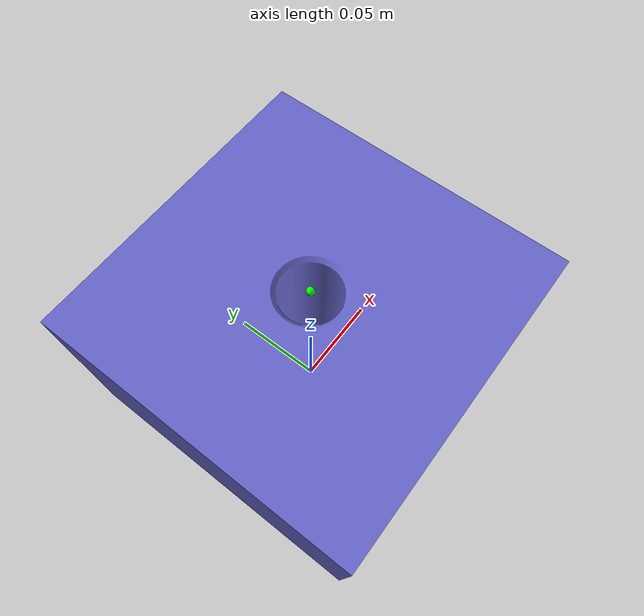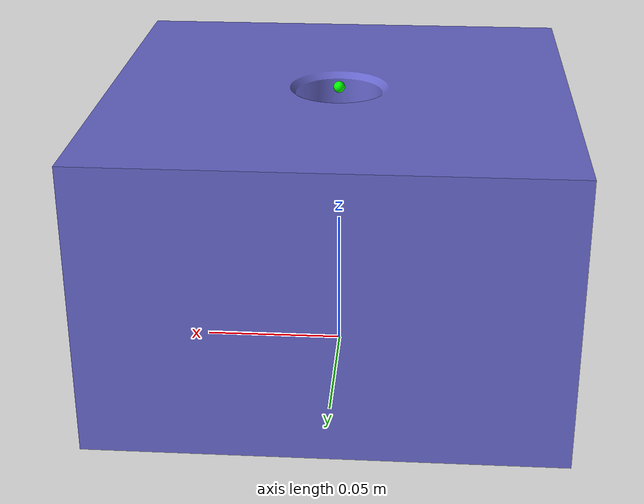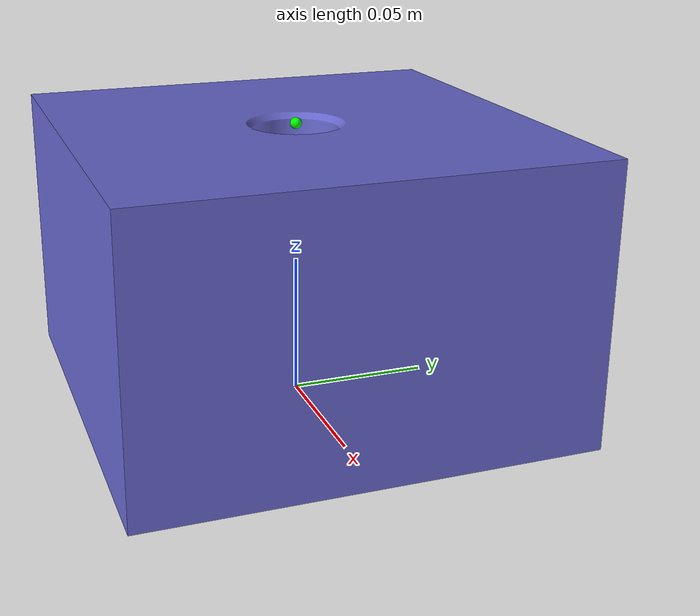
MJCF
<mujoco model="hole_cyl_l_tight">
  <asset>
    <mesh name="hole_cyl_l_tight_visual" file="meshes/hole_cyl_l_tight.stl" scale="0.001 0.001 0.001"/>
    <mesh name="hole_cyl_l_tight_col_0" file="meshes/hole_cyl_l_tight_col_0.stl" scale="0.001 0.001 0.001"/>
    <mesh name="hole_cyl_l_tight_col_1" file="meshes/hole_cyl_l_tight_col_1.stl" scale="0.001 0.001 0.001"/>
    <mesh name="hole_cyl_l_tight_col_2" file="meshes/hole_cyl_l_tight_col_2.stl" scale="0.001 0.001 0.001"/>
    <mesh name="hole_cyl_l_tight_col_3" file="meshes/hole_cyl_l_tight_col_3.stl" scale="0.001 0.001 0.001"/>
    <mesh name="hole_cyl_l_tight_col_4" file="meshes/hole_cyl_l_tight_col_4.stl" scale="0.001 0.001 0.001"/>
    <mesh name="hole_cyl_l_tight_col_5" file="meshes/hole_cyl_l_tight_col_5.stl" scale="0.001 0.001 0.001"/>
    <mesh name="hole_cyl_l_tight_col_6" file="meshes/hole_cyl_l_tight_col_6.stl" scale="0.001 0.001 0.001"/>
    <mesh name="hole_cyl_l_tight_col_7" file="meshes/hole_cyl_l_tight_col_7.stl" scale="0.001 0.001 0.001"/>
    <mesh name="hole_cyl_l_tight_col_8" file="meshes/hole_cyl_l_tight_col_8.stl" scale="0.001 0.001 0.001"/>
    <mesh name="hole_cyl_l_tight_col_9" file="meshes/hole_cyl_l_tight_col_9.stl" scale="0.001 0.001 0.001"/>
    <mesh name="hole_cyl_l_tight_col_10" file="meshes/hole_cyl_l_tight_col_10.stl" scale="0.001 0.001 0.001"/>
    <mesh name="hole_cyl_l_tight_col_11" file="meshes/hole_cyl_l_tight_col_11.stl" scale="0.001 0.001 0.001"/>
    <mesh name="hole_cyl_l_tight_col_12" file="meshes/hole_cyl_l_tight_col_12.stl" scale="0.001 0.001 0.001"/>
    <mesh name="hole_cyl_l_tight_col_13" file="meshes/hole_cyl_l_tight_col_13.stl" scale="0.001 0.001 0.001"/>
    <mesh name="hole_cyl_l_tight_col_14" file="meshes/hole_cyl_l_tight_col_14.stl" scale="0.001 0.001 0.001"/>
    <mesh name="hole_cyl_l_tight_col_15" file="meshes/hole_cyl_l_tight_col_15.stl" scale="0.001 0.001 0.001"/>
    <mesh name="hole_cyl_l_tight_col_16" file="meshes/hole_cyl_l_tight_col_16.stl" scale="0.001 0.001 0.001"/>
    <mesh name="hole_cyl_l_tight_col_17" file="meshes/hole_cyl_l_tight_col_17.stl" scale="0.001 0.001 0.001"/>
    <mesh name="hole_cyl_l_tight_col_18" file="meshes/hole_cyl_l_tight_col_18.stl" scale="0.001 0.001 0.001"/>
    <mesh name="hole_cyl_l_tight_col_19" file="meshes/hole_cyl_l_tight_col_19.stl" scale="0.001 0.001 0.001"/>
    <mesh name="hole_cyl_l_tight_col_20" file="meshes/hole_cyl_l_tight_col_20.stl" scale="0.001 0.001 0.001"/>
    <mesh name="hole_cyl_l_tight_col_21" file="meshes/hole_cyl_l_tight_col_21.stl" scale="0.001 0.001 0.001"/>
    <mesh name="hole_cyl_l_tight_col_22" file="meshes/hole_cyl_l_tight_col_22.stl" scale="0.001 0.001 0.001"/>
    <mesh name="hole_cyl_l_tight_col_23" file="meshes/hole_cyl_l_tight_col_23.stl" scale="0.001 0.001 0.001"/>
    <mesh name="hole_cyl_l_tight_col_24" file="meshes/hole_cyl_l_tight_col_24.stl" scale="0.001 0.001 0.001"/>
    <mesh name="hole_cyl_l_tight_col_25" file="meshes/hole_cyl_l_tight_col_25.stl" scale="0.001 0.001 0.001"/>
    <mesh name="hole_cyl_l_tight_col_26" file="meshes/hole_cyl_l_tight_col_26.stl" scale="0.001 0.001 0.001"/>
    <mesh name="hole_cyl_l_tight_col_27" file="meshes/hole_cyl_l_tight_col_27.stl" scale="0.001 0.001 0.001"/>
    <mesh name="hole_cyl_l_tight_col_28" file="meshes/hole_cyl_l_tight_col_28.stl" scale="0.001 0.001 0.001"/>
    <mesh name="hole_cyl_l_tight_col_29" file="meshes/hole_cyl_l_tight_col_29.stl" scale="0.001 0.001 0.001"/>
    <mesh name="hole_cyl_l_tight_col_30" file="meshes/hole_cyl_l_tight_col_30.stl" scale="0.001 0.001 0.001"/>
    <mesh name="hole_cyl_l_tight_col_31" file="meshes/hole_cyl_l_tight_col_31.stl" scale="0.001 0.001 0.001"/>
    <mesh name="hole_cyl_l_tight_col_32" file="meshes/hole_cyl_l_tight_col_32.stl" scale="0.001 0.001 0.001"/>
    <mesh name="hole_cyl_l_tight_col_33" file="meshes/hole_cyl_l_tight_col_33.stl" scale="0.001 0.001 0.001"/>
    <mesh name="hole_cyl_l_tight_col_34" file="meshes/hole_cyl_l_tight_col_34.stl" scale="0.001 0.001 0.001"/>
    <mesh name="hole_cyl_l_tight_col_35" file="meshes/hole_cyl_l_tight_col_35.stl" scale="0.001 0.001 0.001"/>
    <mesh name="hole_cyl_l_tight_col_36" file="meshes/hole_cyl_l_tight_col_36.stl" scale="0.001 0.001 0.001"/>
    <mesh name="hole_cyl_l_tight_col_37" file="meshes/hole_cyl_l_tight_col_37.stl" scale="0.001 0.001 0.001"/>
    <mesh name="hole_cyl_l_tight_col_38" file="meshes/hole_cyl_l_tight_col_38.stl" scale="0.001 0.001 0.001"/>
    <mesh name="hole_cyl_l_tight_col_39" file="meshes/hole_cyl_l_tight_col_39.stl" scale="0.001 0.001 0.001"/>
    <mesh name="hole_cyl_l_tight_col_40" file="meshes/hole_cyl_l_tight_col_40.stl" scale="0.001 0.001 0.001"/>
    <mesh name="hole_cyl_l_tight_col_41" file="meshes/hole_cyl_l_tight_col_41.stl" scale="0.001 0.001 0.001"/>
    <mesh name="hole_cyl_l_tight_col_42" file="meshes/hole_cyl_l_tight_col_42.stl" scale="0.001 0.001 0.001"/>
    <mesh name="hole_cyl_l_tight_col_43" file="meshes/hole_cyl_l_tight_col_43.stl" scale="0.001 0.001 0.001"/>
    <mesh name="hole_cyl_l_tight_col_44" file="meshes/hole_cyl_l_tight_col_44.stl" scale="0.001 0.001 0.001"/>
    <mesh name="hole_cyl_l_tight_col_45" file="meshes/hole_cyl_l_tight_col_45.stl" scale="0.001 0.001 0.001"/>
    <mesh name="hole_cyl_l_tight_col_46" file="meshes/hole_cyl_l_tight_col_46.stl" scale="0.001 0.001 0.001"/>
    <mesh name="hole_cyl_l_tight_col_47" file="meshes/hole_cyl_l_tight_col_47.stl" scale="0.001 0.001 0.001"/>
    <mesh name="hole_cyl_l_tight_col_48" file="meshes/hole_cyl_l_tight_col_48.stl" scale="0.001 0.001 0.001"/>
    <mesh name="hole_cyl_l_tight_col_49" file="meshes/hole_cyl_l_tight_col_49.stl" scale="0.001 0.001 0.001"/>
    <mesh name="hole_cyl_l_tight_col_50" file="meshes/hole_cyl_l_tight_col_50.stl" scale="0.001 0.001 0.001"/>
    <mesh name="hole_cyl_l_tight_col_51" file="meshes/hole_cyl_l_tight_col_51.stl" scale="0.001 0.001 0.001"/>
    <mesh name="hole_cyl_l_tight_col_52" file="meshes/hole_cyl_l_tight_col_52.stl" scale="0.001 0.001 0.001"/>
    <mesh name="hole_cyl_l_tight_col_53" file="meshes/hole_cyl_l_tight_col_53.stl" scale="0.001 0.001 0.001"/>
    <mesh name="hole_cyl_l_tight_col_54" file="meshes/hole_cyl_l_tight_col_54.stl" scale="0.001 0.001 0.001"/>
    <mesh name="hole_cyl_l_tight_col_55" file="meshes/hole_cyl_l_tight_col_55.stl" scale="0.001 0.001 0.001"/>
    <mesh name="hole_cyl_l_tight_col_56" file="meshes/hole_cyl_l_tight_col_56.stl" scale="0.001 0.001 0.001"/>
    <mesh name="hole_cyl_l_tight_col_57" file="meshes/hole_cyl_l_tight_col_57.stl" scale="0.001 0.001 0.001"/>
    <mesh name="hole_cyl_l_tight_col_58" file="meshes/hole_cyl_l_tight_col_58.stl" scale="0.001 0.001 0.001"/>
    <mesh name="hole_cyl_l_tight_col_59" file="meshes/hole_cyl_l_tight_col_59.stl" scale="0.001 0.001 0.001"/>
    <mesh name="hole_cyl_l_tight_col_60" file="meshes/hole_cyl_l_tight_col_60.stl" scale="0.001 0.001 0.001"/>
    <mesh name="hole_cyl_l_tight_col_61" file="meshes/hole_cyl_l_tight_col_61.stl" scale="0.001 0.001 0.001"/>
    <mesh name="hole_cyl_l_tight_col_62" file="meshes/hole_cyl_l_tight_col_62.stl" scale="0.001 0.001 0.001"/>
    <mesh name="hole_cyl_l_tight_col_63" file="meshes/hole_cyl_l_tight_col_63.stl" scale="0.001 0.001 0.001"/>
    <mesh name="hole_cyl_l_tight_col_64" file="meshes/hole_cyl_l_tight_col_64.stl" scale="0.001 0.001 0.001"/>
    <mesh name="hole_cyl_l_tight_col_65" file="meshes/hole_cyl_l_tight_col_65.stl" scale="0.001 0.001 0.001"/>
    <mesh name="hole_cyl_l_tight_col_66" file="meshes/hole_cyl_l_tight_col_66.stl" scale="0.001 0.001 0.001"/>
    <mesh name="hole_cyl_l_tight_col_67" file="meshes/hole_cyl_l_tight_col_67.stl" scale="0.001 0.001 0.001"/>
    <mesh name="hole_cyl_l_tight_col_68" file="meshes/hole_cyl_l_tight_col_68.stl" scale="0.001 0.001 0.001"/>
    <mesh name="hole_cyl_l_tight_col_69" file="meshes/hole_cyl_l_tight_col_69.stl" scale="0.001 0.001 0.001"/>
    <mesh name="hole_cyl_l_tight_col_70" file="meshes/hole_cyl_l_tight_col_70.stl" scale="0.001 0.001 0.001"/>
    <mesh name="hole_cyl_l_tight_col_71" file="meshes/hole_cyl_l_tight_col_71.stl" scale="0.001 0.001 0.001"/>
    <mesh name="hole_cyl_l_tight_col_72" file="meshes/hole_cyl_l_tight_col_72.stl" scale="0.001 0.001 0.001"/>
    <mesh name="hole_cyl_l_tight_col_73" file="meshes/hole_cyl_l_tight_col_73.stl" scale="0.001 0.001 0.001"/>
    <mesh name="hole_cyl_l_tight_col_74" file="meshes/hole_cyl_l_tight_col_74.stl" scale="0.001 0.001 0.001"/>
    <mesh name="hole_cyl_l_tight_col_75" file="meshes/hole_cyl_l_tight_col_75.stl" scale="0.001 0.001 0.001"/>
    <mesh name="hole_cyl_l_tight_col_76" file="meshes/hole_cyl_l_tight_col_76.stl" scale="0.001 0.001 0.001"/>
    <mesh name="hole_cyl_l_tight_col_77" file="meshes/hole_cyl_l_tight_col_77.stl" scale="0.001 0.001 0.001"/>
    <mesh name="hole_cyl_l_tight_col_78" file="meshes/hole_cyl_l_tight_col_78.stl" scale="0.001 0.001 0.001"/>
    <mesh name="hole_cyl_l_tight_col_79" file="meshes/hole_cyl_l_tight_col_79.stl" scale="0.001 0.001 0.001"/>
    <mesh name="hole_cyl_l_tight_col_80" file="meshes/hole_cyl_l_tight_col_80.stl" scale="0.001 0.001 0.001"/>
    <mesh name="hole_cyl_l_tight_col_81" file="meshes/hole_cyl_l_tight_col_81.stl" scale="0.001 0.001 0.001"/>
    <mesh name="hole_cyl_l_tight_col_82" file="meshes/hole_cyl_l_tight_col_82.stl" scale="0.001 0.001 0.001"/>
    <mesh name="hole_cyl_l_tight_col_83" file="meshes/hole_cyl_l_tight_col_83.stl" scale="0.001 0.001 0.001"/>
    <mesh name="hole_cyl_l_tight_col_84" file="meshes/hole_cyl_l_tight_col_84.stl" scale="0.001 0.001 0.001"/>
    <mesh name="hole_cyl_l_tight_col_85" file="meshes/hole_cyl_l_tight_col_85.stl" scale="0.001 0.001 0.001"/>
    <mesh name="hole_cyl_l_tight_col_86" file="meshes/hole_cyl_l_tight_col_86.stl" scale="0.001 0.001 0.001"/>
    <mesh name="hole_cyl_l_tight_col_87" file="meshes/hole_cyl_l_tight_col_87.stl" scale="0.001 0.001 0.001"/>
    <mesh name="hole_cyl_l_tight_col_88" file="meshes/hole_cyl_l_tight_col_88.stl" scale="0.001 0.001 0.001"/>
    <mesh name="hole_cyl_l_tight_col_89" file="meshes/hole_cyl_l_tight_col_89.stl" scale="0.001 0.001 0.001"/>
    <mesh name="hole_cyl_l_tight_col_90" file="meshes/hole_cyl_l_tight_col_90.stl" scale="0.001 0.001 0.001"/>
    <mesh name="hole_cyl_l_tight_col_91" file="meshes/hole_cyl_l_tight_col_91.stl" scale="0.001 0.001 0.001"/>
    <mesh name="hole_cyl_l_tight_col_92" file="meshes/hole_cyl_l_tight_col_92.stl" scale="0.001 0.001 0.001"/>
    <mesh name="hole_cyl_l_tight_col_93" file="meshes/hole_cyl_l_tight_col_93.stl" scale="0.001 0.001 0.001"/>
    <mesh name="hole_cyl_l_tight_col_94" file="meshes/hole_cyl_l_tight_col_94.stl" scale="0.001 0.001 0.001"/>
    <mesh name="hole_cyl_l_tight_col_95" file="meshes/hole_cyl_l_tight_col_95.stl" scale="0.001 0.001 0.001"/>
    <mesh name="hole_cyl_l_tight_col_96" file="meshes/hole_cyl_l_tight_col_96.stl" scale="0.001 0.001 0.001"/>
    <mesh name="hole_cyl_l_tight_col_97" file="meshes/hole_cyl_l_tight_col_97.stl" scale="0.001 0.001 0.001"/>
    <mesh name="hole_cyl_l_tight_col_98" file="meshes/hole_cyl_l_tight_col_98.stl" scale="0.001 0.001 0.001"/>
    <mesh name="hole_cyl_l_tight_col_99" file="meshes/hole_cyl_l_tight_col_99.stl" scale="0.001 0.001 0.001"/>
    <mesh name="hole_cyl_l_tight_col_100" file="meshes/hole_cyl_l_tight_col_100.stl" scale="0.001 0.001 0.001"/>
    <mesh name="hole_cyl_l_tight_col_101" file="meshes/hole_cyl_l_tight_col_101.stl" scale="0.001 0.001 0.001"/>
    <mesh name="hole_cyl_l_tight_col_102" file="meshes/hole_cyl_l_tight_col_102.stl" scale="0.001 0.001 0.001"/>
    <mesh name="hole_cyl_l_tight_col_103" file="meshes/hole_cyl_l_tight_col_103.stl" scale="0.001 0.001 0.001"/>
    <mesh name="hole_cyl_l_tight_col_104" file="meshes/hole_cyl_l_tight_col_104.stl" scale="0.001 0.001 0.001"/>
    <mesh name="hole_cyl_l_tight_col_105" file="meshes/hole_cyl_l_tight_col_105.stl" scale="0.001 0.001 0.001"/>
    <mesh name="hole_cyl_l_tight_col_106" file="meshes/hole_cyl_l_tight_col_106.stl" scale="0.001 0.001 0.001"/>
    <mesh name="hole_cyl_l_tight_col_107" file="meshes/hole_cyl_l_tight_col_107.stl" scale="0.001 0.001 0.001"/>
    <mesh name="hole_cyl_l_tight_col_108" file="meshes/hole_cyl_l_tight_col_108.stl" scale="0.001 0.001 0.001"/>
    <mesh name="hole_cyl_l_tight_col_109" file="meshes/hole_cyl_l_tight_col_109.stl" scale="0.001 0.001 0.001"/>
    <mesh name="hole_cyl_l_tight_col_110" file="meshes/hole_cyl_l_tight_col_110.stl" scale="0.001 0.001 0.001"/>
    <mesh name="hole_cyl_l_tight_col_111" file="meshes/hole_cyl_l_tight_col_111.stl" scale="0.001 0.001 0.001"/>
    <mesh name="hole_cyl_l_tight_col_112" file="meshes/hole_cyl_l_tight_col_112.stl" scale="0.001 0.001 0.001"/>
    <mesh name="hole_cyl_l_tight_col_113" file="meshes/hole_cyl_l_tight_col_113.stl" scale="0.001 0.001 0.001"/>
    <mesh name="hole_cyl_l_tight_col_114" file="meshes/hole_cyl_l_tight_col_114.stl" scale="0.001 0.001 0.001"/>
    <mesh name="hole_cyl_l_tight_col_115" file="meshes/hole_cyl_l_tight_col_115.stl" scale="0.001 0.001 0.001"/>
    <mesh name="hole_cyl_l_tight_col_116" file="meshes/hole_cyl_l_tight_col_116.stl" scale="0.001 0.001 0.001"/>
    <mesh name="hole_cyl_l_tight_col_117" file="meshes/hole_cyl_l_tight_col_117.stl" scale="0.001 0.001 0.001"/>
    <mesh name="hole_cyl_l_tight_col_118" file="meshes/hole_cyl_l_tight_col_118.stl" scale="0.001 0.001 0.001"/>
    <mesh name="hole_cyl_l_tight_col_119" file="meshes/hole_cyl_l_tight_col_119.stl" scale="0.001 0.001 0.001"/>
    <mesh name="hole_cyl_l_tight_col_120" file="meshes/hole_cyl_l_tight_col_120.stl" scale="0.001 0.001 0.001"/>
    <mesh name="hole_cyl_l_tight_col_121" file="meshes/hole_cyl_l_tight_col_121.stl" scale="0.001 0.001 0.001"/>
    <mesh name="hole_cyl_l_tight_col_122" file="meshes/hole_cyl_l_tight_col_122.stl" scale="0.001 0.001 0.001"/>
    <mesh name="hole_cyl_l_tight_col_123" file="meshes/hole_cyl_l_tight_col_123.stl" scale="0.001 0.001 0.001"/>
    <mesh name="hole_cyl_l_tight_col_124" file="meshes/hole_cyl_l_tight_col_124.stl" scale="0.001 0.001 0.001"/>
    <mesh name="hole_cyl_l_tight_col_125" file="meshes/hole_cyl_l_tight_col_125.stl" scale="0.001 0.001 0.001"/>
    <mesh name="hole_cyl_l_tight_col_126" file="meshes/hole_cyl_l_tight_col_126.stl" scale="0.001 0.001 0.001"/>
    <mesh name="hole_cyl_l_tight_col_127" file="meshes/hole_cyl_l_tight_col_127.stl" scale="0.001 0.001 0.001"/>
    <mesh name="hole_cyl_l_tight_col_128" file="meshes/hole_cyl_l_tight_col_128.stl" scale="0.001 0.001 0.001"/>
    <mesh name="hole_cyl_l_tight_col_129" file="meshes/hole_cyl_l_tight_col_129.stl" scale="0.001 0.001 0.001"/>
    <mesh name="hole_cyl_l_tight_col_130" file="meshes/hole_cyl_l_tight_col_130.stl" scale="0.001 0.001 0.001"/>
    <mesh name="hole_cyl_l_tight_col_131" file="meshes/hole_cyl_l_tight_col_131.stl" scale="0.001 0.001 0.001"/>
    <mesh name="hole_cyl_l_tight_col_132" file="meshes/hole_cyl_l_tight_col_132.stl" scale="0.001 0.001 0.001"/>
    <mesh name="hole_cyl_l_tight_col_133" file="meshes/hole_cyl_l_tight_col_133.stl" scale="0.001 0.001 0.001"/>
    <mesh name="hole_cyl_l_tight_col_134" file="meshes/hole_cyl_l_tight_col_134.stl" scale="0.001 0.001 0.001"/>
    <mesh name="hole_cyl_l_tight_col_135" file="meshes/hole_cyl_l_tight_col_135.stl" scale="0.001 0.001 0.001"/>
    <mesh name="hole_cyl_l_tight_col_136" file="meshes/hole_cyl_l_tight_col_136.stl" scale="0.001 0.001 0.001"/>
    <mesh name="hole_cyl_l_tight_col_137" file="meshes/hole_cyl_l_tight_col_137.stl" scale="0.001 0.001 0.001"/>
    <mesh name="hole_cyl_l_tight_col_138" file="meshes/hole_cyl_l_tight_col_138.stl" scale="0.001 0.001 0.001"/>
    <mesh name="hole_cyl_l_tight_col_139" file="meshes/hole_cyl_l_tight_col_139.stl" scale="0.001 0.001 0.001"/>
    <mesh name="hole_cyl_l_tight_col_140" file="meshes/hole_cyl_l_tight_col_140.stl" scale="0.001 0.001 0.001"/>
    <mesh name="hole_cyl_l_tight_col_141" file="meshes/hole_cyl_l_tight_col_141.stl" scale="0.001 0.001 0.001"/>
    <mesh name="hole_cyl_l_tight_col_142" file="meshes/hole_cyl_l_tight_col_142.stl" scale="0.001 0.001 0.001"/>
    <mesh name="hole_cyl_l_tight_col_143" file="meshes/hole_cyl_l_tight_col_143.stl" scale="0.001 0.001 0.001"/>
    <mesh name="hole_cyl_l_tight_col_144" file="meshes/hole_cyl_l_tight_col_144.stl" scale="0.001 0.001 0.001"/>
    <mesh name="hole_cyl_l_tight_col_145" file="meshes/hole_cyl_l_tight_col_145.stl" scale="0.001 0.001 0.001"/>
    <mesh name="hole_cyl_l_tight_col_146" file="meshes/hole_cyl_l_tight_col_146.stl" scale="0.001 0.001 0.001"/>
    <mesh name="hole_cyl_l_tight_col_147" file="meshes/hole_cyl_l_tight_col_147.stl" scale="0.001 0.001 0.001"/>
    <mesh name="hole_cyl_l_tight_col_148" file="meshes/hole_cyl_l_tight_col_148.stl" scale="0.001 0.001 0.001"/>
    <mesh name="hole_cyl_l_tight_col_149" file="meshes/hole_cyl_l_tight_col_149.stl" scale="0.001 0.001 0.001"/>
    <mesh name="hole_cyl_l_tight_col_150" file="meshes/hole_cyl_l_tight_col_150.stl" scale="0.001 0.001 0.001"/>
    <mesh name="hole_cyl_l_tight_col_151" file="meshes/hole_cyl_l_tight_col_151.stl" scale="0.001 0.001 0.001"/>
    <mesh name="hole_cyl_l_tight_col_152" file="meshes/hole_cyl_l_tight_col_152.stl" scale="0.001 0.001 0.001"/>
    <mesh name="hole_cyl_l_tight_col_153" file="meshes/hole_cyl_l_tight_col_153.stl" scale="0.001 0.001 0.001"/>
    <mesh name="hole_cyl_l_tight_col_154" file="meshes/hole_cyl_l_tight_col_154.stl" scale="0.001 0.001 0.001"/>
    <mesh name="hole_cyl_l_tight_col_155" file="meshes/hole_cyl_l_tight_col_155.stl" scale="0.001 0.001 0.001"/>
    <mesh name="hole_cyl_l_tight_col_156" file="meshes/hole_cyl_l_tight_col_156.stl" scale="0.001 0.001 0.001"/>
    <mesh name="hole_cyl_l_tight_col_157" file="meshes/hole_cyl_l_tight_col_157.stl" scale="0.001 0.001 0.001"/>
    <mesh name="hole_cyl_l_tight_col_158" file="meshes/hole_cyl_l_tight_col_158.stl" scale="0.001 0.001 0.001"/>
    <mesh name="hole_cyl_l_tight_col_159" file="meshes/hole_cyl_l_tight_col_159.stl" scale="0.001 0.001 0.001"/>
    <mesh name="hole_cyl_l_tight_col_160" file="meshes/hole_cyl_l_tight_col_160.stl" scale="0.001 0.001 0.001"/>
  </asset>

  <worldbody>
    <body name="fixture" pos="0 0 0">
      <geom name="hole_cyl_l_tight_visual" type="mesh" mesh="hole_cyl_l_tight_visual"
            contype="0" conaffinity="0"
            rgba="0.4 0.4 0.8 1.0"/>
      <geom name="hole_cyl_l_tight_col_0" type="mesh" mesh="hole_cyl_l_tight_col_0"
            rgba="0.4 0.4 0.8 0.0"
            friction="0.2 0.005 0.0001"
            solref="0.02 1"
            solimp="0.9 0.95 0.001"/>
      <geom name="hole_cyl_l_tight_col_1" type="mesh" mesh="hole_cyl_l_tight_col_1"
            rgba="0.4 0.4 0.8 0.0"
            friction="0.2 0.005 0.0001"
            solref="0.02 1"
            solimp="0.9 0.95 0.001"/>
      <geom name="hole_cyl_l_tight_col_2" type="mesh" mesh="hole_cyl_l_tight_col_2"
            rgba="0.4 0.4 0.8 0.0"
            friction="0.2 0.005 0.0001"
            solref="0.02 1"
            solimp="0.9 0.95 0.001"/>
      <geom name="hole_cyl_l_tight_col_3" type="mesh" mesh="hole_cyl_l_tight_col_3"
            rgba="0.4 0.4 0.8 0.0"
            friction="0.2 0.005 0.0001"
            solref="0.02 1"
            solimp="0.9 0.95 0.001"/>
      <geom name="hole_cyl_l_tight_col_4" type="mesh" mesh="hole_cyl_l_tight_col_4"
            rgba="0.4 0.4 0.8 0.0"
            friction="0.2 0.005 0.0001"
            solref="0.02 1"
            solimp="0.9 0.95 0.001"/>
      <geom name="hole_cyl_l_tight_col_5" type="mesh" mesh="hole_cyl_l_tight_col_5"
            rgba="0.4 0.4 0.8 0.0"
            friction="0.2 0.005 0.0001"
            solref="0.02 1"
            solimp="0.9 0.95 0.001"/>
      <geom name="hole_cyl_l_tight_col_6" type="mesh" mesh="hole_cyl_l_tight_col_6"
            rgba="0.4 0.4 0.8 0.0"
            friction="0.2 0.005 0.0001"
            solref="0.02 1"
            solimp="0.9 0.95 0.001"/>
      <geom name="hole_cyl_l_tight_col_7" type="mesh" mesh="hole_cyl_l_tight_col_7"
            rgba="0.4 0.4 0.8 0.0"
            friction="0.2 0.005 0.0001"
            solref="0.02 1"
            solimp="0.9 0.95 0.001"/>
      <geom name="hole_cyl_l_tight_col_8" type="mesh" mesh="hole_cyl_l_tight_col_8"
            rgba="0.4 0.4 0.8 0.0"
            friction="0.2 0.005 0.0001"
            solref="0.02 1"
            solimp="0.9 0.95 0.001"/>
      <geom name="hole_cyl_l_tight_col_9" type="mesh" mesh="hole_cyl_l_tight_col_9"
            rgba="0.4 0.4 0.8 0.0"
            friction="0.2 0.005 0.0001"
            solref="0.02 1"
            solimp="0.9 0.95 0.001"/>
      <geom name="hole_cyl_l_tight_col_10" type="mesh" mesh="hole_cyl_l_tight_col_10"
            rgba="0.4 0.4 0.8 0.0"
            friction="0.2 0.005 0.0001"
            solref="0.02 1"
            solimp="0.9 0.95 0.001"/>
      <geom name="hole_cyl_l_tight_col_11" type="mesh" mesh="hole_cyl_l_tight_col_11"
            rgba="0.4 0.4 0.8 0.0"
            friction="0.2 0.005 0.0001"
            solref="0.02 1"
            solimp="0.9 0.95 0.001"/>
      <geom name="hole_cyl_l_tight_col_12" type="mesh" mesh="hole_cyl_l_tight_col_12"
            rgba="0.4 0.4 0.8 0.0"
            friction="0.2 0.005 0.0001"
            solref="0.02 1"
            solimp="0.9 0.95 0.001"/>
      <geom name="hole_cyl_l_tight_col_13" type="mesh" mesh="hole_cyl_l_tight_col_13"
            rgba="0.4 0.4 0.8 0.0"
            friction="0.2 0.005 0.0001"
            solref="0.02 1"
            solimp="0.9 0.95 0.001"/>
      <geom name="hole_cyl_l_tight_col_14" type="mesh" mesh="hole_cyl_l_tight_col_14"
            rgba="0.4 0.4 0.8 0.0"
            friction="0.2 0.005 0.0001"
            solref="0.02 1"
            solimp="0.9 0.95 0.001"/>
      <geom name="hole_cyl_l_tight_col_15" type="mesh" mesh="hole_cyl_l_tight_col_15"
            rgba="0.4 0.4 0.8 0.0"
            friction="0.2 0.005 0.0001"
            solref="0.02 1"
            solimp="0.9 0.95 0.001"/>
      <geom name="hole_cyl_l_tight_col_16" type="mesh" mesh="hole_cyl_l_tight_col_16"
            rgba="0.4 0.4 0.8 0.0"
            friction="0.2 0.005 0.0001"
            solref="0.02 1"
            solimp="0.9 0.95 0.001"/>
      <geom name="hole_cyl_l_tight_col_17" type="mesh" mesh="hole_cyl_l_tight_col_17"
            rgba="0.4 0.4 0.8 0.0"
            friction="0.2 0.005 0.0001"
            solref="0.02 1"
            solimp="0.9 0.95 0.001"/>
      <geom name="hole_cyl_l_tight_col_18" type="mesh" mesh="hole_cyl_l_tight_col_18"
            rgba="0.4 0.4 0.8 0.0"
            friction="0.2 0.005 0.0001"
            solref="0.02 1"
            solimp="0.9 0.95 0.001"/>
      <geom name="hole_cyl_l_tight_col_19" type="mesh" mesh="hole_cyl_l_tight_col_19"
            rgba="0.4 0.4 0.8 0.0"
            friction="0.2 0.005 0.0001"
            solref="0.02 1"
            solimp="0.9 0.95 0.001"/>
      <geom name="hole_cyl_l_tight_col_20" type="mesh" mesh="hole_cyl_l_tight_col_20"
            rgba="0.4 0.4 0.8 0.0"
            friction="0.2 0.005 0.0001"
            solref="0.02 1"
            solimp="0.9 0.95 0.001"/>
      <geom name="hole_cyl_l_tight_col_21" type="mesh" mesh="hole_cyl_l_tight_col_21"
            rgba="0.4 0.4 0.8 0.0"
            friction="0.2 0.005 0.0001"
            solref="0.02 1"
            solimp="0.9 0.95 0.001"/>
      <geom name="hole_cyl_l_tight_col_22" type="mesh" mesh="hole_cyl_l_tight_col_22"
            rgba="0.4 0.4 0.8 0.0"
            friction="0.2 0.005 0.0001"
            solref="0.02 1"
            solimp="0.9 0.95 0.001"/>
      <geom name="hole_cyl_l_tight_col_23" type="mesh" mesh="hole_cyl_l_tight_col_23"
            rgba="0.4 0.4 0.8 0.0"
            friction="0.2 0.005 0.0001"
            solref="0.02 1"
            solimp="0.9 0.95 0.001"/>
      <geom name="hole_cyl_l_tight_col_24" type="mesh" mesh="hole_cyl_l_tight_col_24"
            rgba="0.4 0.4 0.8 0.0"
            friction="0.2 0.005 0.0001"
            solref="0.02 1"
            solimp="0.9 0.95 0.001"/>
      <geom name="hole_cyl_l_tight_col_25" type="mesh" mesh="hole_cyl_l_tight_col_25"
            rgba="0.4 0.4 0.8 0.0"
            friction="0.2 0.005 0.0001"
            solref="0.02 1"
            solimp="0.9 0.95 0.001"/>
      <geom name="hole_cyl_l_tight_col_26" type="mesh" mesh="hole_cyl_l_tight_col_26"
            rgba="0.4 0.4 0.8 0.0"
            friction="0.2 0.005 0.0001"
            solref="0.02 1"
            solimp="0.9 0.95 0.001"/>
      <geom name="hole_cyl_l_tight_col_27" type="mesh" mesh="hole_cyl_l_tight_col_27"
            rgba="0.4 0.4 0.8 0.0"
            friction="0.2 0.005 0.0001"
            solref="0.02 1"
            solimp="0.9 0.95 0.001"/>
      <geom name="hole_cyl_l_tight_col_28" type="mesh" mesh="hole_cyl_l_tight_col_28"
            rgba="0.4 0.4 0.8 0.0"
            friction="0.2 0.005 0.0001"
            solref="0.02 1"
            solimp="0.9 0.95 0.001"/>
      <geom name="hole_cyl_l_tight_col_29" type="mesh" mesh="hole_cyl_l_tight_col_29"
            rgba="0.4 0.4 0.8 0.0"
            friction="0.2 0.005 0.0001"
            solref="0.02 1"
            solimp="0.9 0.95 0.001"/>
      <geom name="hole_cyl_l_tight_col_30" type="mesh" mesh="hole_cyl_l_tight_col_30"
            rgba="0.4 0.4 0.8 0.0"
            friction="0.2 0.005 0.0001"
            solref="0.02 1"
            solimp="0.9 0.95 0.001"/>
      <geom name="hole_cyl_l_tight_col_31" type="mesh" mesh="hole_cyl_l_tight_col_31"
            rgba="0.4 0.4 0.8 0.0"
            friction="0.2 0.005 0.0001"
            solref="0.02 1"
            solimp="0.9 0.95 0.001"/>
      <geom name="hole_cyl_l_tight_col_32" type="mesh" mesh="hole_cyl_l_tight_col_32"
            rgba="0.4 0.4 0.8 0.0"
            friction="0.2 0.005 0.0001"
            solref="0.02 1"
            solimp="0.9 0.95 0.001"/>
      <geom name="hole_cyl_l_tight_col_33" type="mesh" mesh="hole_cyl_l_tight_col_33"
            rgba="0.4 0.4 0.8 0.0"
            friction="0.2 0.005 0.0001"
            solref="0.02 1"
            solimp="0.9 0.95 0.001"/>
      <geom name="hole_cyl_l_tight_col_34" type="mesh" mesh="hole_cyl_l_tight_col_34"
            rgba="0.4 0.4 0.8 0.0"
            friction="0.2 0.005 0.0001"
            solref="0.02 1"
            solimp="0.9 0.95 0.001"/>
      <geom name="hole_cyl_l_tight_col_35" type="mesh" mesh="hole_cyl_l_tight_col_35"
            rgba="0.4 0.4 0.8 0.0"
            friction="0.2 0.005 0.0001"
            solref="0.02 1"
            solimp="0.9 0.95 0.001"/>
      <geom name="hole_cyl_l_tight_col_36" type="mesh" mesh="hole_cyl_l_tight_col_36"
            rgba="0.4 0.4 0.8 0.0"
            friction="0.2 0.005 0.0001"
            solref="0.02 1"
            solimp="0.9 0.95 0.001"/>
      <geom name="hole_cyl_l_tight_col_37" type="mesh" mesh="hole_cyl_l_tight_col_37"
            rgba="0.4 0.4 0.8 0.0"
            friction="0.2 0.005 0.0001"
            solref="0.02 1"
            solimp="0.9 0.95 0.001"/>
      <geom name="hole_cyl_l_tight_col_38" type="mesh" mesh="hole_cyl_l_tight_col_38"
            rgba="0.4 0.4 0.8 0.0"
            friction="0.2 0.005 0.0001"
            solref="0.02 1"
            solimp="0.9 0.95 0.001"/>
      <geom name="hole_cyl_l_tight_col_39" type="mesh" mesh="hole_cyl_l_tight_col_39"
            rgba="0.4 0.4 0.8 0.0"
            friction="0.2 0.005 0.0001"
            solref="0.02 1"
            solimp="0.9 0.95 0.001"/>
      <geom name="hole_cyl_l_tight_col_40" type="mesh" mesh="hole_cyl_l_tight_col_40"
            rgba="0.4 0.4 0.8 0.0"
            friction="0.2 0.005 0.0001"
            solref="0.02 1"
            solimp="0.9 0.95 0.001"/>
      <geom name="hole_cyl_l_tight_col_41" type="mesh" mesh="hole_cyl_l_tight_col_41"
            rgba="0.4 0.4 0.8 0.0"
            friction="0.2 0.005 0.0001"
            solref="0.02 1"
            solimp="0.9 0.95 0.001"/>
      <geom name="hole_cyl_l_tight_col_42" type="mesh" mesh="hole_cyl_l_tight_col_42"
            rgba="0.4 0.4 0.8 0.0"
            friction="0.2 0.005 0.0001"
            solref="0.02 1"
            solimp="0.9 0.95 0.001"/>
      <geom name="hole_cyl_l_tight_col_43" type="mesh" mesh="hole_cyl_l_tight_col_43"
            rgba="0.4 0.4 0.8 0.0"
            friction="0.2 0.005 0.0001"
            solref="0.02 1"
            solimp="0.9 0.95 0.001"/>
      <geom name="hole_cyl_l_tight_col_44" type="mesh" mesh="hole_cyl_l_tight_col_44"
            rgba="0.4 0.4 0.8 0.0"
            friction="0.2 0.005 0.0001"
            solref="0.02 1"
            solimp="0.9 0.95 0.001"/>
      <geom name="hole_cyl_l_tight_col_45" type="mesh" mesh="hole_cyl_l_tight_col_45"
            rgba="0.4 0.4 0.8 0.0"
            friction="0.2 0.005 0.0001"
            solref="0.02 1"
            solimp="0.9 0.95 0.001"/>
      <geom name="hole_cyl_l_tight_col_46" type="mesh" mesh="hole_cyl_l_tight_col_46"
            rgba="0.4 0.4 0.8 0.0"
            friction="0.2 0.005 0.0001"
            solref="0.02 1"
            solimp="0.9 0.95 0.001"/>
      <geom name="hole_cyl_l_tight_col_47" type="mesh" mesh="hole_cyl_l_tight_col_47"
            rgba="0.4 0.4 0.8 0.0"
            friction="0.2 0.005 0.0001"
            solref="0.02 1"
            solimp="0.9 0.95 0.001"/>
      <geom name="hole_cyl_l_tight_col_48" type="mesh" mesh="hole_cyl_l_tight_col_48"
            rgba="0.4 0.4 0.8 0.0"
            friction="0.2 0.005 0.0001"
            solref="0.02 1"
            solimp="0.9 0.95 0.001"/>
      <geom name="hole_cyl_l_tight_col_49" type="mesh" mesh="hole_cyl_l_tight_col_49"
            rgba="0.4 0.4 0.8 0.0"
            friction="0.2 0.005 0.0001"
            solref="0.02 1"
            solimp="0.9 0.95 0.001"/>
      <geom name="hole_cyl_l_tight_col_50" type="mesh" mesh="hole_cyl_l_tight_col_50"
            rgba="0.4 0.4 0.8 0.0"
            friction="0.2 0.005 0.0001"
            solref="0.02 1"
            solimp="0.9 0.95 0.001"/>
      <geom name="hole_cyl_l_tight_col_51" type="mesh" mesh="hole_cyl_l_tight_col_51"
            rgba="0.4 0.4 0.8 0.0"
            friction="0.2 0.005 0.0001"
            solref="0.02 1"
            solimp="0.9 0.95 0.001"/>
      <geom name="hole_cyl_l_tight_col_52" type="mesh" mesh="hole_cyl_l_tight_col_52"
            rgba="0.4 0.4 0.8 0.0"
            friction="0.2 0.005 0.0001"
            solref="0.02 1"
            solimp="0.9 0.95 0.001"/>
      <geom name="hole_cyl_l_tight_col_53" type="mesh" mesh="hole_cyl_l_tight_col_53"
            rgba="0.4 0.4 0.8 0.0"
            friction="0.2 0.005 0.0001"
            solref="0.02 1"
            solimp="0.9 0.95 0.001"/>
      <geom name="hole_cyl_l_tight_col_54" type="mesh" mesh="hole_cyl_l_tight_col_54"
            rgba="0.4 0.4 0.8 0.0"
            friction="0.2 0.005 0.0001"
            solref="0.02 1"
            solimp="0.9 0.95 0.001"/>
      <geom name="hole_cyl_l_tight_col_55" type="mesh" mesh="hole_cyl_l_tight_col_55"
            rgba="0.4 0.4 0.8 0.0"
            friction="0.2 0.005 0.0001"
            solref="0.02 1"
            solimp="0.9 0.95 0.001"/>
      <geom name="hole_cyl_l_tight_col_56" type="mesh" mesh="hole_cyl_l_tight_col_56"
            rgba="0.4 0.4 0.8 0.0"
            friction="0.2 0.005 0.0001"
            solref="0.02 1"
            solimp="0.9 0.95 0.001"/>
      <geom name="hole_cyl_l_tight_col_57" type="mesh" mesh="hole_cyl_l_tight_col_57"
            rgba="0.4 0.4 0.8 0.0"
            friction="0.2 0.005 0.0001"
            solref="0.02 1"
            solimp="0.9 0.95 0.001"/>
      <geom name="hole_cyl_l_tight_col_58" type="mesh" mesh="hole_cyl_l_tight_col_58"
            rgba="0.4 0.4 0.8 0.0"
            friction="0.2 0.005 0.0001"
            solref="0.02 1"
            solimp="0.9 0.95 0.001"/>
      <geom name="hole_cyl_l_tight_col_59" type="mesh" mesh="hole_cyl_l_tight_col_59"
            rgba="0.4 0.4 0.8 0.0"
            friction="0.2 0.005 0.0001"
            solref="0.02 1"
            solimp="0.9 0.95 0.001"/>
      <geom name="hole_cyl_l_tight_col_60" type="mesh" mesh="hole_cyl_l_tight_col_60"
            rgba="0.4 0.4 0.8 0.0"
            friction="0.2 0.005 0.0001"
            solref="0.02 1"
            solimp="0.9 0.95 0.001"/>
      <geom name="hole_cyl_l_tight_col_61" type="mesh" mesh="hole_cyl_l_tight_col_61"
            rgba="0.4 0.4 0.8 0.0"
            friction="0.2 0.005 0.0001"
            solref="0.02 1"
            solimp="0.9 0.95 0.001"/>
      <geom name="hole_cyl_l_tight_col_62" type="mesh" mesh="hole_cyl_l_tight_col_62"
            rgba="0.4 0.4 0.8 0.0"
            friction="0.2 0.005 0.0001"
            solref="0.02 1"
            solimp="0.9 0.95 0.001"/>
      <geom name="hole_cyl_l_tight_col_63" type="mesh" mesh="hole_cyl_l_tight_col_63"
            rgba="0.4 0.4 0.8 0.0"
            friction="0.2 0.005 0.0001"
            solref="0.02 1"
            solimp="0.9 0.95 0.001"/>
      <geom name="hole_cyl_l_tight_col_64" type="mesh" mesh="hole_cyl_l_tight_col_64"
            rgba="0.4 0.4 0.8 0.0"
            friction="0.2 0.005 0.0001"
            solref="0.02 1"
            solimp="0.9 0.95 0.001"/>
      <geom name="hole_cyl_l_tight_col_65" type="mesh" mesh="hole_cyl_l_tight_col_65"
            rgba="0.4 0.4 0.8 0.0"
            friction="0.2 0.005 0.0001"
            solref="0.02 1"
            solimp="0.9 0.95 0.001"/>
      <geom name="hole_cyl_l_tight_col_66" type="mesh" mesh="hole_cyl_l_tight_col_66"
            rgba="0.4 0.4 0.8 0.0"
            friction="0.2 0.005 0.0001"
            solref="0.02 1"
            solimp="0.9 0.95 0.001"/>
      <geom name="hole_cyl_l_tight_col_67" type="mesh" mesh="hole_cyl_l_tight_col_67"
            rgba="0.4 0.4 0.8 0.0"
            friction="0.2 0.005 0.0001"
            solref="0.02 1"
            solimp="0.9 0.95 0.001"/>
      <geom name="hole_cyl_l_tight_col_68" type="mesh" mesh="hole_cyl_l_tight_col_68"
            rgba="0.4 0.4 0.8 0.0"
            friction="0.2 0.005 0.0001"
            solref="0.02 1"
            solimp="0.9 0.95 0.001"/>
      <geom name="hole_cyl_l_tight_col_69" type="mesh" mesh="hole_cyl_l_tight_col_69"
            rgba="0.4 0.4 0.8 0.0"
            friction="0.2 0.005 0.0001"
            solref="0.02 1"
            solimp="0.9 0.95 0.001"/>
      <geom name="hole_cyl_l_tight_col_70" type="mesh" mesh="hole_cyl_l_tight_col_70"
            rgba="0.4 0.4 0.8 0.0"
            friction="0.2 0.005 0.0001"
            solref="0.02 1"
            solimp="0.9 0.95 0.001"/>
      <geom name="hole_cyl_l_tight_col_71" type="mesh" mesh="hole_cyl_l_tight_col_71"
            rgba="0.4 0.4 0.8 0.0"
            friction="0.2 0.005 0.0001"
            solref="0.02 1"
            solimp="0.9 0.95 0.001"/>
      <geom name="hole_cyl_l_tight_col_72" type="mesh" mesh="hole_cyl_l_tight_col_72"
            rgba="0.4 0.4 0.8 0.0"
            friction="0.2 0.005 0.0001"
            solref="0.02 1"
            solimp="0.9 0.95 0.001"/>
      <geom name="hole_cyl_l_tight_col_73" type="mesh" mesh="hole_cyl_l_tight_col_73"
            rgba="0.4 0.4 0.8 0.0"
            friction="0.2 0.005 0.0001"
            solref="0.02 1"
            solimp="0.9 0.95 0.001"/>
      <geom name="hole_cyl_l_tight_col_74" type="mesh" mesh="hole_cyl_l_tight_col_74"
            rgba="0.4 0.4 0.8 0.0"
            friction="0.2 0.005 0.0001"
            solref="0.02 1"
            solimp="0.9 0.95 0.001"/>
      <geom name="hole_cyl_l_tight_col_75" type="mesh" mesh="hole_cyl_l_tight_col_75"
            rgba="0.4 0.4 0.8 0.0"
            friction="0.2 0.005 0.0001"
            solref="0.02 1"
            solimp="0.9 0.95 0.001"/>
      <geom name="hole_cyl_l_tight_col_76" type="mesh" mesh="hole_cyl_l_tight_col_76"
            rgba="0.4 0.4 0.8 0.0"
            friction="0.2 0.005 0.0001"
            solref="0.02 1"
            solimp="0.9 0.95 0.001"/>
      <geom name="hole_cyl_l_tight_col_77" type="mesh" mesh="hole_cyl_l_tight_col_77"
            rgba="0.4 0.4 0.8 0.0"
            friction="0.2 0.005 0.0001"
            solref="0.02 1"
            solimp="0.9 0.95 0.001"/>
      <geom name="hole_cyl_l_tight_col_78" type="mesh" mesh="hole_cyl_l_tight_col_78"
            rgba="0.4 0.4 0.8 0.0"
            friction="0.2 0.005 0.0001"
            solref="0.02 1"
            solimp="0.9 0.95 0.001"/>
      <geom name="hole_cyl_l_tight_col_79" type="mesh" mesh="hole_cyl_l_tight_col_79"
            rgba="0.4 0.4 0.8 0.0"
            friction="0.2 0.005 0.0001"
            solref="0.02 1"
            solimp="0.9 0.95 0.001"/>
      <geom name="hole_cyl_l_tight_col_80" type="mesh" mesh="hole_cyl_l_tight_col_80"
            rgba="0.4 0.4 0.8 0.0"
            friction="0.2 0.005 0.0001"
            solref="0.02 1"
            solimp="0.9 0.95 0.001"/>
      <geom name="hole_cyl_l_tight_col_81" type="mesh" mesh="hole_cyl_l_tight_col_81"
            rgba="0.4 0.4 0.8 0.0"
            friction="0.2 0.005 0.0001"
            solref="0.02 1"
            solimp="0.9 0.95 0.001"/>
      <geom name="hole_cyl_l_tight_col_82" type="mesh" mesh="hole_cyl_l_tight_col_82"
            rgba="0.4 0.4 0.8 0.0"
            friction="0.2 0.005 0.0001"
            solref="0.02 1"
            solimp="0.9 0.95 0.001"/>
      <geom name="hole_cyl_l_tight_col_83" type="mesh" mesh="hole_cyl_l_tight_col_83"
            rgba="0.4 0.4 0.8 0.0"
            friction="0.2 0.005 0.0001"
            solref="0.02 1"
            solimp="0.9 0.95 0.001"/>
      <geom name="hole_cyl_l_tight_col_84" type="mesh" mesh="hole_cyl_l_tight_col_84"
            rgba="0.4 0.4 0.8 0.0"
            friction="0.2 0.005 0.0001"
            solref="0.02 1"
            solimp="0.9 0.95 0.001"/>
      <geom name="hole_cyl_l_tight_col_85" type="mesh" mesh="hole_cyl_l_tight_col_85"
            rgba="0.4 0.4 0.8 0.0"
            friction="0.2 0.005 0.0001"
            solref="0.02 1"
            solimp="0.9 0.95 0.001"/>
      <geom name="hole_cyl_l_tight_col_86" type="mesh" mesh="hole_cyl_l_tight_col_86"
            rgba="0.4 0.4 0.8 0.0"
            friction="0.2 0.005 0.0001"
            solref="0.02 1"
            solimp="0.9 0.95 0.001"/>
      <geom name="hole_cyl_l_tight_col_87" type="mesh" mesh="hole_cyl_l_tight_col_87"
            rgba="0.4 0.4 0.8 0.0"
            friction="0.2 0.005 0.0001"
            solref="0.02 1"
            solimp="0.9 0.95 0.001"/>
      <geom name="hole_cyl_l_tight_col_88" type="mesh" mesh="hole_cyl_l_tight_col_88"
            rgba="0.4 0.4 0.8 0.0"
            friction="0.2 0.005 0.0001"
            solref="0.02 1"
            solimp="0.9 0.95 0.001"/>
      <geom name="hole_cyl_l_tight_col_89" type="mesh" mesh="hole_cyl_l_tight_col_89"
            rgba="0.4 0.4 0.8 0.0"
            friction="0.2 0.005 0.0001"
            solref="0.02 1"
            solimp="0.9 0.95 0.001"/>
      <geom name="hole_cyl_l_tight_col_90" type="mesh" mesh="hole_cyl_l_tight_col_90"
            rgba="0.4 0.4 0.8 0.0"
            friction="0.2 0.005 0.0001"
            solref="0.02 1"
            solimp="0.9 0.95 0.001"/>
      <geom name="hole_cyl_l_tight_col_91" type="mesh" mesh="hole_cyl_l_tight_col_91"
            rgba="0.4 0.4 0.8 0.0"
            friction="0.2 0.005 0.0001"
            solref="0.02 1"
            solimp="0.9 0.95 0.001"/>
      <geom name="hole_cyl_l_tight_col_92" type="mesh" mesh="hole_cyl_l_tight_col_92"
            rgba="0.4 0.4 0.8 0.0"
            friction="0.2 0.005 0.0001"
            solref="0.02 1"
            solimp="0.9 0.95 0.001"/>
      <geom name="hole_cyl_l_tight_col_93" type="mesh" mesh="hole_cyl_l_tight_col_93"
            rgba="0.4 0.4 0.8 0.0"
            friction="0.2 0.005 0.0001"
            solref="0.02 1"
            solimp="0.9 0.95 0.001"/>
      <geom name="hole_cyl_l_tight_col_94" type="mesh" mesh="hole_cyl_l_tight_col_94"
            rgba="0.4 0.4 0.8 0.0"
            friction="0.2 0.005 0.0001"
            solref="0.02 1"
            solimp="0.9 0.95 0.001"/>
      <geom name="hole_cyl_l_tight_col_95" type="mesh" mesh="hole_cyl_l_tight_col_95"
            rgba="0.4 0.4 0.8 0.0"
            friction="0.2 0.005 0.0001"
            solref="0.02 1"
            solimp="0.9 0.95 0.001"/>
      <geom name="hole_cyl_l_tight_col_96" type="mesh" mesh="hole_cyl_l_tight_col_96"
            rgba="0.4 0.4 0.8 0.0"
            friction="0.2 0.005 0.0001"
            solref="0.02 1"
            solimp="0.9 0.95 0.001"/>
      <geom name="hole_cyl_l_tight_col_97" type="mesh" mesh="hole_cyl_l_tight_col_97"
            rgba="0.4 0.4 0.8 0.0"
            friction="0.2 0.005 0.0001"
            solref="0.02 1"
            solimp="0.9 0.95 0.001"/>
      <geom name="hole_cyl_l_tight_col_98" type="mesh" mesh="hole_cyl_l_tight_col_98"
            rgba="0.4 0.4 0.8 0.0"
            friction="0.2 0.005 0.0001"
            solref="0.02 1"
            solimp="0.9 0.95 0.001"/>
      <geom name="hole_cyl_l_tight_col_99" type="mesh" mesh="hole_cyl_l_tight_col_99"
            rgba="0.4 0.4 0.8 0.0"
            friction="0.2 0.005 0.0001"
            solref="0.02 1"
            solimp="0.9 0.95 0.001"/>
      <geom name="hole_cyl_l_tight_col_100" type="mesh" mesh="hole_cyl_l_tight_col_100"
            rgba="0.4 0.4 0.8 0.0"
            friction="0.2 0.005 0.0001"
            solref="0.02 1"
            solimp="0.9 0.95 0.001"/>
      <geom name="hole_cyl_l_tight_col_101" type="mesh" mesh="hole_cyl_l_tight_col_101"
            rgba="0.4 0.4 0.8 0.0"
            friction="0.2 0.005 0.0001"
            solref="0.02 1"
            solimp="0.9 0.95 0.001"/>
      <geom name="hole_cyl_l_tight_col_102" type="mesh" mesh="hole_cyl_l_tight_col_102"
            rgba="0.4 0.4 0.8 0.0"
            friction="0.2 0.005 0.0001"
            solref="0.02 1"
            solimp="0.9 0.95 0.001"/>
      <geom name="hole_cyl_l_tight_col_103" type="mesh" mesh="hole_cyl_l_tight_col_103"
            rgba="0.4 0.4 0.8 0.0"
            friction="0.2 0.005 0.0001"
            solref="0.02 1"
            solimp="0.9 0.95 0.001"/>
      <geom name="hole_cyl_l_tight_col_104" type="mesh" mesh="hole_cyl_l_tight_col_104"
            rgba="0.4 0.4 0.8 0.0"
            friction="0.2 0.005 0.0001"
            solref="0.02 1"
            solimp="0.9 0.95 0.001"/>
      <geom name="hole_cyl_l_tight_col_105" type="mesh" mesh="hole_cyl_l_tight_col_105"
            rgba="0.4 0.4 0.8 0.0"
            friction="0.2 0.005 0.0001"
            solref="0.02 1"
            solimp="0.9 0.95 0.001"/>
      <geom name="hole_cyl_l_tight_col_106" type="mesh" mesh="hole_cyl_l_tight_col_106"
            rgba="0.4 0.4 0.8 0.0"
            friction="0.2 0.005 0.0001"
            solref="0.02 1"
            solimp="0.9 0.95 0.001"/>
      <geom name="hole_cyl_l_tight_col_107" type="mesh" mesh="hole_cyl_l_tight_col_107"
            rgba="0.4 0.4 0.8 0.0"
            friction="0.2 0.005 0.0001"
            solref="0.02 1"
            solimp="0.9 0.95 0.001"/>
      <geom name="hole_cyl_l_tight_col_108" type="mesh" mesh="hole_cyl_l_tight_col_108"
            rgba="0.4 0.4 0.8 0.0"
            friction="0.2 0.005 0.0001"
            solref="0.02 1"
            solimp="0.9 0.95 0.001"/>
      <geom name="hole_cyl_l_tight_col_109" type="mesh" mesh="hole_cyl_l_tight_col_109"
            rgba="0.4 0.4 0.8 0.0"
            friction="0.2 0.005 0.0001"
            solref="0.02 1"
            solimp="0.9 0.95 0.001"/>
      <geom name="hole_cyl_l_tight_col_110" type="mesh" mesh="hole_cyl_l_tight_col_110"
            rgba="0.4 0.4 0.8 0.0"
            friction="0.2 0.005 0.0001"
            solref="0.02 1"
            solimp="0.9 0.95 0.001"/>
      <geom name="hole_cyl_l_tight_col_111" type="mesh" mesh="hole_cyl_l_tight_col_111"
            rgba="0.4 0.4 0.8 0.0"
            friction="0.2 0.005 0.0001"
            solref="0.02 1"
            solimp="0.9 0.95 0.001"/>
      <geom name="hole_cyl_l_tight_col_112" type="mesh" mesh="hole_cyl_l_tight_col_112"
            rgba="0.4 0.4 0.8 0.0"
            friction="0.2 0.005 0.0001"
            solref="0.02 1"
            solimp="0.9 0.95 0.001"/>
      <geom name="hole_cyl_l_tight_col_113" type="mesh" mesh="hole_cyl_l_tight_col_113"
            rgba="0.4 0.4 0.8 0.0"
            friction="0.2 0.005 0.0001"
            solref="0.02 1"
            solimp="0.9 0.95 0.001"/>
      <geom name="hole_cyl_l_tight_col_114" type="mesh" mesh="hole_cyl_l_tight_col_114"
            rgba="0.4 0.4 0.8 0.0"
            friction="0.2 0.005 0.0001"
            solref="0.02 1"
            solimp="0.9 0.95 0.001"/>
      <geom name="hole_cyl_l_tight_col_115" type="mesh" mesh="hole_cyl_l_tight_col_115"
            rgba="0.4 0.4 0.8 0.0"
            friction="0.2 0.005 0.0001"
            solref="0.02 1"
            solimp="0.9 0.95 0.001"/>
      <geom name="hole_cyl_l_tight_col_116" type="mesh" mesh="hole_cyl_l_tight_col_116"
            rgba="0.4 0.4 0.8 0.0"
            friction="0.2 0.005 0.0001"
            solref="0.02 1"
            solimp="0.9 0.95 0.001"/>
      <geom name="hole_cyl_l_tight_col_117" type="mesh" mesh="hole_cyl_l_tight_col_117"
            rgba="0.4 0.4 0.8 0.0"
            friction="0.2 0.005 0.0001"
            solref="0.02 1"
            solimp="0.9 0.95 0.001"/>
      <geom name="hole_cyl_l_tight_col_118" type="mesh" mesh="hole_cyl_l_tight_col_118"
            rgba="0.4 0.4 0.8 0.0"
            friction="0.2 0.005 0.0001"
            solref="0.02 1"
            solimp="0.9 0.95 0.001"/>
      <geom name="hole_cyl_l_tight_col_119" type="mesh" mesh="hole_cyl_l_tight_col_119"
            rgba="0.4 0.4 0.8 0.0"
            friction="0.2 0.005 0.0001"
            solref="0.02 1"
            solimp="0.9 0.95 0.001"/>
      <geom name="hole_cyl_l_tight_col_120" type="mesh" mesh="hole_cyl_l_tight_col_120"
            rgba="0.4 0.4 0.8 0.0"
            friction="0.2 0.005 0.0001"
            solref="0.02 1"
            solimp="0.9 0.95 0.001"/>
      <geom name="hole_cyl_l_tight_col_121" type="mesh" mesh="hole_cyl_l_tight_col_121"
            rgba="0.4 0.4 0.8 0.0"
            friction="0.2 0.005 0.0001"
            solref="0.02 1"
            solimp="0.9 0.95 0.001"/>
      <geom name="hole_cyl_l_tight_col_122" type="mesh" mesh="hole_cyl_l_tight_col_122"
            rgba="0.4 0.4 0.8 0.0"
            friction="0.2 0.005 0.0001"
            solref="0.02 1"
            solimp="0.9 0.95 0.001"/>
      <geom name="hole_cyl_l_tight_col_123" type="mesh" mesh="hole_cyl_l_tight_col_123"
            rgba="0.4 0.4 0.8 0.0"
            friction="0.2 0.005 0.0001"
            solref="0.02 1"
            solimp="0.9 0.95 0.001"/>
      <geom name="hole_cyl_l_tight_col_124" type="mesh" mesh="hole_cyl_l_tight_col_124"
            rgba="0.4 0.4 0.8 0.0"
            friction="0.2 0.005 0.0001"
            solref="0.02 1"
            solimp="0.9 0.95 0.001"/>
      <geom name="hole_cyl_l_tight_col_125" type="mesh" mesh="hole_cyl_l_tight_col_125"
            rgba="0.4 0.4 0.8 0.0"
            friction="0.2 0.005 0.0001"
            solref="0.02 1"
            solimp="0.9 0.95 0.001"/>
      <geom name="hole_cyl_l_tight_col_126" type="mesh" mesh="hole_cyl_l_tight_col_126"
            rgba="0.4 0.4 0.8 0.0"
            friction="0.2 0.005 0.0001"
            solref="0.02 1"
            solimp="0.9 0.95 0.001"/>
      <geom name="hole_cyl_l_tight_col_127" type="mesh" mesh="hole_cyl_l_tight_col_127"
            rgba="0.4 0.4 0.8 0.0"
            friction="0.2 0.005 0.0001"
            solref="0.02 1"
            solimp="0.9 0.95 0.001"/>
      <geom name="hole_cyl_l_tight_col_128" type="mesh" mesh="hole_cyl_l_tight_col_128"
            rgba="0.4 0.4 0.8 0.0"
            friction="0.2 0.005 0.0001"
            solref="0.02 1"
            solimp="0.9 0.95 0.001"/>
      <geom name="hole_cyl_l_tight_col_129" type="mesh" mesh="hole_cyl_l_tight_col_129"
            rgba="0.4 0.4 0.8 0.0"
            friction="0.2 0.005 0.0001"
            solref="0.02 1"
            solimp="0.9 0.95 0.001"/>
      <geom name="hole_cyl_l_tight_col_130" type="mesh" mesh="hole_cyl_l_tight_col_130"
            rgba="0.4 0.4 0.8 0.0"
            friction="0.2 0.005 0.0001"
            solref="0.02 1"
            solimp="0.9 0.95 0.001"/>
      <geom name="hole_cyl_l_tight_col_131" type="mesh" mesh="hole_cyl_l_tight_col_131"
            rgba="0.4 0.4 0.8 0.0"
            friction="0.2 0.005 0.0001"
            solref="0.02 1"
            solimp="0.9 0.95 0.001"/>
      <geom name="hole_cyl_l_tight_col_132" type="mesh" mesh="hole_cyl_l_tight_col_132"
            rgba="0.4 0.4 0.8 0.0"
            friction="0.2 0.005 0.0001"
            solref="0.02 1"
            solimp="0.9 0.95 0.001"/>
      <geom name="hole_cyl_l_tight_col_133" type="mesh" mesh="hole_cyl_l_tight_col_133"
            rgba="0.4 0.4 0.8 0.0"
            friction="0.2 0.005 0.0001"
            solref="0.02 1"
            solimp="0.9 0.95 0.001"/>
      <geom name="hole_cyl_l_tight_col_134" type="mesh" mesh="hole_cyl_l_tight_col_134"
            rgba="0.4 0.4 0.8 0.0"
            friction="0.2 0.005 0.0001"
            solref="0.02 1"
            solimp="0.9 0.95 0.001"/>
      <geom name="hole_cyl_l_tight_col_135" type="mesh" mesh="hole_cyl_l_tight_col_135"
            rgba="0.4 0.4 0.8 0.0"
            friction="0.2 0.005 0.0001"
            solref="0.02 1"
            solimp="0.9 0.95 0.001"/>
      <geom name="hole_cyl_l_tight_col_136" type="mesh" mesh="hole_cyl_l_tight_col_136"
            rgba="0.4 0.4 0.8 0.0"
            friction="0.2 0.005 0.0001"
            solref="0.02 1"
            solimp="0.9 0.95 0.001"/>
      <geom name="hole_cyl_l_tight_col_137" type="mesh" mesh="hole_cyl_l_tight_col_137"
            rgba="0.4 0.4 0.8 0.0"
            friction="0.2 0.005 0.0001"
            solref="0.02 1"
            solimp="0.9 0.95 0.001"/>
      <geom name="hole_cyl_l_tight_col_138" type="mesh" mesh="hole_cyl_l_tight_col_138"
            rgba="0.4 0.4 0.8 0.0"
            friction="0.2 0.005 0.0001"
            solref="0.02 1"
            solimp="0.9 0.95 0.001"/>
      <geom name="hole_cyl_l_tight_col_139" type="mesh" mesh="hole_cyl_l_tight_col_139"
            rgba="0.4 0.4 0.8 0.0"
            friction="0.2 0.005 0.0001"
            solref="0.02 1"
            solimp="0.9 0.95 0.001"/>
      <geom name="hole_cyl_l_tight_col_140" type="mesh" mesh="hole_cyl_l_tight_col_140"
            rgba="0.4 0.4 0.8 0.0"
            friction="0.2 0.005 0.0001"
            solref="0.02 1"
            solimp="0.9 0.95 0.001"/>
      <geom name="hole_cyl_l_tight_col_141" type="mesh" mesh="hole_cyl_l_tight_col_141"
            rgba="0.4 0.4 0.8 0.0"
            friction="0.2 0.005 0.0001"
            solref="0.02 1"
            solimp="0.9 0.95 0.001"/>
      <geom name="hole_cyl_l_tight_col_142" type="mesh" mesh="hole_cyl_l_tight_col_142"
            rgba="0.4 0.4 0.8 0.0"
            friction="0.2 0.005 0.0001"
            solref="0.02 1"
            solimp="0.9 0.95 0.001"/>
      <geom name="hole_cyl_l_tight_col_143" type="mesh" mesh="hole_cyl_l_tight_col_143"
            rgba="0.4 0.4 0.8 0.0"
            friction="0.2 0.005 0.0001"
            solref="0.02 1"
            solimp="0.9 0.95 0.001"/>
      <geom name="hole_cyl_l_tight_col_144" type="mesh" mesh="hole_cyl_l_tight_col_144"
            rgba="0.4 0.4 0.8 0.0"
            friction="0.2 0.005 0.0001"
            solref="0.02 1"
            solimp="0.9 0.95 0.001"/>
      <geom name="hole_cyl_l_tight_col_145" type="mesh" mesh="hole_cyl_l_tight_col_145"
            rgba="0.4 0.4 0.8 0.0"
            friction="0.2 0.005 0.0001"
            solref="0.02 1"
            solimp="0.9 0.95 0.001"/>
      <geom name="hole_cyl_l_tight_col_146" type="mesh" mesh="hole_cyl_l_tight_col_146"
            rgba="0.4 0.4 0.8 0.0"
            friction="0.2 0.005 0.0001"
            solref="0.02 1"
            solimp="0.9 0.95 0.001"/>
      <geom name="hole_cyl_l_tight_col_147" type="mesh" mesh="hole_cyl_l_tight_col_147"
            rgba="0.4 0.4 0.8 0.0"
            friction="0.2 0.005 0.0001"
            solref="0.02 1"
            solimp="0.9 0.95 0.001"/>
      <geom name="hole_cyl_l_tight_col_148" type="mesh" mesh="hole_cyl_l_tight_col_148"
            rgba="0.4 0.4 0.8 0.0"
            friction="0.2 0.005 0.0001"
            solref="0.02 1"
            solimp="0.9 0.95 0.001"/>
      <geom name="hole_cyl_l_tight_col_149" type="mesh" mesh="hole_cyl_l_tight_col_149"
            rgba="0.4 0.4 0.8 0.0"
            friction="0.2 0.005 0.0001"
            solref="0.02 1"
            solimp="0.9 0.95 0.001"/>
      <geom name="hole_cyl_l_tight_col_150" type="mesh" mesh="hole_cyl_l_tight_col_150"
            rgba="0.4 0.4 0.8 0.0"
            friction="0.2 0.005 0.0001"
            solref="0.02 1"
            solimp="0.9 0.95 0.001"/>
      <geom name="hole_cyl_l_tight_col_151" type="mesh" mesh="hole_cyl_l_tight_col_151"
            rgba="0.4 0.4 0.8 0.0"
            friction="0.2 0.005 0.0001"
            solref="0.02 1"
            solimp="0.9 0.95 0.001"/>
      <geom name="hole_cyl_l_tight_col_152" type="mesh" mesh="hole_cyl_l_tight_col_152"
            rgba="0.4 0.4 0.8 0.0"
            friction="0.2 0.005 0.0001"
            solref="0.02 1"
            solimp="0.9 0.95 0.001"/>
      <geom name="hole_cyl_l_tight_col_153" type="mesh" mesh="hole_cyl_l_tight_col_153"
            rgba="0.4 0.4 0.8 0.0"
            friction="0.2 0.005 0.0001"
            solref="0.02 1"
            solimp="0.9 0.95 0.001"/>
      <geom name="hole_cyl_l_tight_col_154" type="mesh" mesh="hole_cyl_l_tight_col_154"
            rgba="0.4 0.4 0.8 0.0"
            friction="0.2 0.005 0.0001"
            solref="0.02 1"
            solimp="0.9 0.95 0.001"/>
      <geom name="hole_cyl_l_tight_col_155" type="mesh" mesh="hole_cyl_l_tight_col_155"
            rgba="0.4 0.4 0.8 0.0"
            friction="0.2 0.005 0.0001"
            solref="0.02 1"
            solimp="0.9 0.95 0.001"/>
      <geom name="hole_cyl_l_tight_col_156" type="mesh" mesh="hole_cyl_l_tight_col_156"
            rgba="0.4 0.4 0.8 0.0"
            friction="0.2 0.005 0.0001"
            solref="0.02 1"
            solimp="0.9 0.95 0.001"/>
      <geom name="hole_cyl_l_tight_col_157" type="mesh" mesh="hole_cyl_l_tight_col_157"
            rgba="0.4 0.4 0.8 0.0"
            friction="0.2 0.005 0.0001"
            solref="0.02 1"
            solimp="0.9 0.95 0.001"/>
      <geom name="hole_cyl_l_tight_col_158" type="mesh" mesh="hole_cyl_l_tight_col_158"
            rgba="0.4 0.4 0.8 0.0"
            friction="0.2 0.005 0.0001"
            solref="0.02 1"
            solimp="0.9 0.95 0.001"/>
      <geom name="hole_cyl_l_tight_col_159" type="mesh" mesh="hole_cyl_l_tight_col_159"
            rgba="0.4 0.4 0.8 0.0"
            friction="0.2 0.005 0.0001"
            solref="0.02 1"
            solimp="0.9 0.95 0.001"/>
      <geom name="hole_cyl_l_tight_col_160" type="mesh" mesh="hole_cyl_l_tight_col_160"
            rgba="0.4 0.4 0.8 0.0"
            friction="0.2 0.005 0.0001"
            solref="0.02 1"
            solimp="0.9 0.95 0.001"/>

      <site name="hole_entrance" pos="0 0 0.1" size="0.002" rgba="0 1 0 1"/>
      <site name="hole_bottom"   pos="0 0 0.0" size="0.002" rgba="0 0 1 1"/>
    </body>
  </worldbody>
</mujoco>
